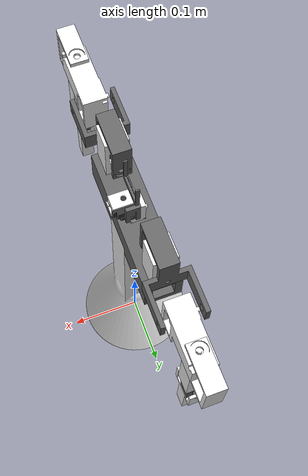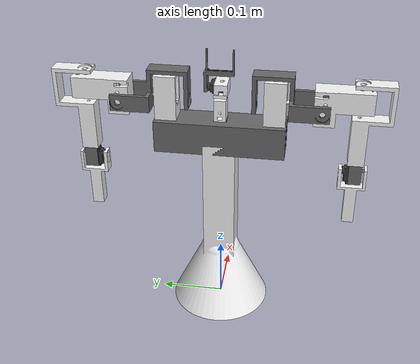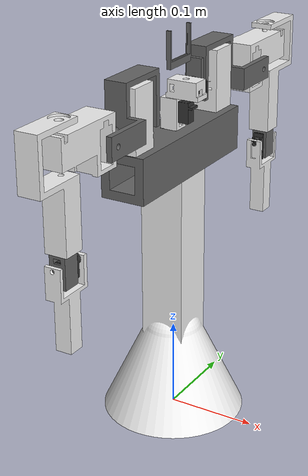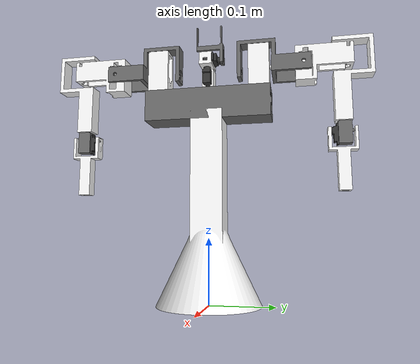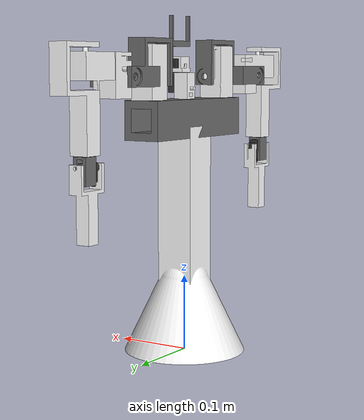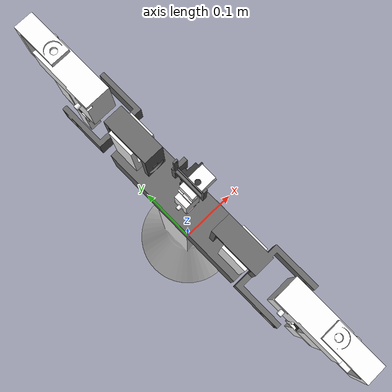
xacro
<?xml version="1.0"?>
<robot name="pibob" xmlns:xacro="http://www.ros.org/wiki/xacro">

  <xacro:property name="mesh_pkg" value="package://pibob_description/meshes"/>

  <!-- ===== arm-part debug toggles: flip a part to false to hide it while seating another.
       All default true, so the full arm renders normally. ===== -->
  <xacro:property name="show_top"     value="true"/>
  <xacro:property name="show_bracket" value="true"/>
  <xacro:property name="show_holder"  value="true"/>
  <xacro:property name="show_bicep"   value="true"/>
  <xacro:property name="show_forearm" value="true"/>   <!-- the elbow piece -->
  <xacro:property name="show_forearm_mesh" value="true"/>  <!-- the swinging forearm -->

  <!-- ============ Materials ============ -->
  <material name="white"><color rgba="0.95 0.95 0.95 1"/></material>
  <material name="grey"><color rgba="0.4 0.4 0.4 1"/></material>
  <material name="servo_grey"><color rgba="0.2 0.2 0.2 1"/></material>

  <xacro:macro name="servo_9g" params="xyz rpy">
    <visual>
      <origin xyz="${xyz}" rpy="${rpy}"/>
      <geometry><mesh filename="${mesh_pkg}/Servo-9g.stl" scale="0.001 0.001 0.001"/></geometry>
      <material name="servo_grey"/>
    </visual>
  </xacro:macro>

  <!-- ============ Base + torso ============ -->
  <link name="base_link">
    <visual>
      <origin xyz="0 0 0" rpy="0 0 0"/>
      <geometry><mesh filename="${mesh_pkg}/Desktop-Base.stl" scale="0.001 0.001 0.001"/></geometry>
      <material name="white"/>
    </visual>
  </link>

  <joint name="base_to_beam" type="fixed">
    <parent link="base_link"/>
    <child  link="shoulder_beam"/>
    <origin xyz="0 0 0.30" rpy="0 0 0"/>
  </joint>

  <link name="shoulder_beam">
    <visual>
      <origin xyz="0 0 0" rpy="1.5708 0 0"/>
      <geometry><mesh filename="${mesh_pkg}/Shoulder-Beam.stl" scale="0.001 0.001 0.001"/></geometry>
      <material name="grey"/>
    </visual>
  </link>

  <!-- ============ Head ============ -->
  <joint name="beam_to_head_base" type="fixed">
    <parent link="shoulder_beam"/>
    <child  link="head_base_link"/>
    <origin xyz="0 0 0.0355" rpy="0 0 0"/>   <!-- beam top face, on the head hole centre -->
  </joint>

  <!-- fixed to the beam: the bottom holder + the pan servo standing in it -->
  <link name="head_base_link">
    <visual>
      <origin xyz="-0.0025 0 0.00975" rpy="0 ${-pi/2} ${-pi/2}"/>   <!-- peg down, pocket forward -->
      <geometry><mesh filename="${mesh_pkg}/Head-BottomServoHolder.stl" scale="0.001 0.001 0.001"/></geometry>
      <material name="white"/>
    </visual>
    <xacro:servo_9g xyz="0.0159 0 0.03485" rpy="0 0 ${pi}"/>    <!-- pan servo (CH2), shaft up -->
  </link>

  <joint name="head_pan_joint" type="revolute">
    <parent link="shoulder_beam"/>
    <child  link="head_pan_link"/>
    <!-- pan servo shaft axis, at its horn face (top of the gear boss) -->
    <origin xyz="0.0159 0 0.07035" rpy="0 0 0"/>
    <axis xyz="0 0 1"/>
    <!-- safe range CH2: 0..180 deg => -pi/2..+pi/2 about home (90 deg) -->
    <limit lower="-1.5708" upper="1.5708" effort="1.0" velocity="3.14"/>
  </joint>

  <!-- turns with pan: the middle holder (on the pan horn) + the tilt servo inside it -->
  <link name="head_pan_link">
    <visual>
      <origin xyz="0 0.0005 0.010" rpy="0 0 0"/>
      <geometry><mesh filename="${mesh_pkg}/Head-MiddleServoHolder.stl" scale="0.001 0.001 0.001"/></geometry>
      <material name="white"/>
    </visual>
    <xacro:servo_9g xyz="-0.00315 0.0212 0.01105" rpy="${-pi/2} 0 0"/>    <!-- tilt servo (CH3) -->
  </link>

  <joint name="head_tilt_joint" type="revolute">
    <parent link="head_pan_link"/>
    <child  link="head_tilt_link"/>
    <!-- tilt servo shaft axis, at its horn face (where the camera arm sits on the horn) -->
    <origin xyz="-0.00315 0.0212 0.01105" rpy="0 0 0"/>
    <axis xyz="0 1 0"/>
    <!-- safe range CH3: 50..140 deg => -40..+50 deg around home -->
    <limit lower="-0.6981" upper="0.8727" effort="1.0" velocity="3.14"/>
  </joint>

  <!-- turns with tilt: the camera holder, its arm's hub hole on the tilt shaft -->
  <link name="head_tilt_link">
    <visual>
      <origin xyz="0 -0.01775 0.02867" rpy="0 ${pi/2} 0"/>
      <geometry><mesh filename="${mesh_pkg}/Head-CameraHolder.stl" scale="0.001 0.001 0.001"/></geometry>
      <material name="grey"/>
    </visual>
  </link>

  <joint name="head_to_camera" type="fixed">
    <parent link="head_tilt_link"/>
    <child  link="camera_link"/>
    <!-- centre of the camera board in the holder's U-frame -->
    <origin xyz="-0.00625 -0.0195 0.04467" rpy="0 0 0"/>
  </joint>

  <link name="camera_link"/>

  <!-- ============ Arm macro ============ -->
  <xacro:macro name="arm" params="side reflect bracket_mesh holder_mesh">

    <!-- Top servo holder: FIXED into the Shoulder-Beam end (houses the CH7/CH11 servo) -->
    <joint name="${side}_shoulder_top_joint" type="fixed">
      <parent link="shoulder_beam"/>
      <child  link="${side}_shoulder_top_link"/>
      <origin xyz="0 ${0.085*reflect} 0.065" rpy="0 0 0"/>
    </joint>
    <link name="${side}_shoulder_top_link">
      <xacro:if value="${show_top}">
      <visual>
        <!-- roll 180 = small end down; per-side yaw flips the pin to mirror the two holders -->
        <origin xyz="0 0 0" rpy="3.14159 0 ${(1+reflect)/2*3.14159}"/>
        <geometry><mesh filename="${mesh_pkg}/Shoulder-Top-ServoHolder.stl" scale="0.001 0.001 0.001"/></geometry>
        <material name="white"/>
      </visual>
      </xacro:if>
    </link>

    <!-- CH7/CH11 shoulder_rot: top holder rotates the BRACKET (arm up/down front) -->
    <joint name="${side}_shoulder_rot_joint" type="revolute">
      <parent link="${side}_shoulder_top_link"/>
      <child  link="${side}_shoulder_rot_link"/>
      <!-- on the top holder's dia-5.8 pin (= CH7/CH11 shaft axis), at the pin root -->
      <origin xyz="0 ${0.01345*reflect} 0.0049" rpy="0 0 0"/>
      <axis xyz="0 ${reflect} 0"/>
      <limit lower="-0.3491" upper="1.0472" effort="1.0" velocity="3.14"/>
    </joint>
    <link name="${side}_shoulder_rot_link">
      <xacro:if value="${show_bracket}">
      <visual>
        <!-- per-side yaw: invert the our-left (reflect=-1) bracket 180 to mirror -->
        <origin xyz="0.0 ${0.00655*reflect} 0.0131" rpy="0 0 ${(1-reflect)/2*3.14159}"/>
        <geometry><mesh filename="${mesh_pkg}/${bracket_mesh}" scale="0.001 0.001 0.001"/></geometry>
        <material name="grey"/>
      </visual>
      </xacro:if>
    </link>

    <joint name="${side}_shoulder_lift_joint" type="revolute">
      <parent link="${side}_shoulder_rot_link"/>
      <child  link="${side}_shoulder_lift_link"/>
      <!-- on the shoulder servo holder's dia-5.8 X pin (= CH6/CH10 shaft axis), at the pin root -->
      <origin xyz="-0.01345 ${0.05605*reflect} 0.00465" rpy="0 0 0"/>
      <axis xyz="${reflect} 0 0"/>   <!-- mirror per side so both arms wing out symmetrically -->
      <!-- CH6/CH10 safe 70..110 -->
      <limit lower="-0.3491" upper="0.3491" effort="1.0" velocity="3.14"/>
    </joint>
    <link name="${side}_shoulder_lift_link">
      <xacro:if value="${show_holder}">
      <visual>
        <origin xyz="0.01345 ${0.0275*reflect} -0.00455" rpy="0 -1.5708 3.14159"/>
        <geometry><mesh filename="${mesh_pkg}/${holder_mesh}" scale="0.001 0.001 0.001"/></geometry>
        <material name="white"/>
      </visual>
      </xacro:if>
    </link>

    <joint name="${side}_arm_rot_joint" type="revolute">
      <parent link="${side}_shoulder_lift_link"/>
      <child  link="${side}_upper_arm_link"/>
      <!-- on the shoulder servo holder's dia-5.8 Z pin (= CH5/CH9 shaft axis), at the pin root -->
      <origin xyz="0.017 ${0.0511*reflect} 0.0199" rpy="0 0 0"/>
      <axis xyz="0 0 1"/>
      <!-- CH5/CH9: opened to ~+/-51deg (was +/-20 "safe 70..110") — widen/narrow as needed -->
      <limit lower="-0.9" upper="0.9" effort="1.0" velocity="3.14"/>
    </joint>
    <link name="${side}_upper_arm_link">
      <xacro:if value="${show_bicep}">
      <visual>
        <!-- bicep: right (reflect=+1) = pi; left gets -180 to mirror -->
        <origin xyz="0.00045 ${0.0194*reflect} -0.05445" rpy="0 1.5708 ${3.14159 - (1-reflect)/2*3.14159}"/>
        <geometry><mesh filename="${mesh_pkg}/Arm-Bicep.stl" scale="0.001 0.001 0.001"/></geometry>
        <material name="white"/>
      </visual>
      </xacro:if>
      <!-- elbow: FIXED to the bicep (houses CH4 servo) — does NOT move with the joint. -->
      <xacro:if value="${show_forearm}">
      <visual>
        <origin xyz="0.00045 ${0.0054*reflect} -0.13045" rpy="-1.5708 0 ${1.5708*reflect}"/>
        <geometry><mesh filename="${mesh_pkg}/Arm-Elbow.stl" scale="0.001 0.001 0.001"/></geometry>
        <material name="grey"/>
      </visual>
      <!-- elbow servo (CH4/CH8) in the elbow holder's pocket; its shaft is the bicep axis -->
      <xacro:servo_9g xyz="0.00045 ${-0.0178*reflect} -0.13455" rpy="${pi/2} ${pi/2} ${(1-reflect)/2*pi}"/>
      </xacro:if>
    </link>

    <joint name="${side}_bicep_joint" type="revolute">
      <parent link="${side}_upper_arm_link"/>
      <child  link="${side}_forearm_link"/>
      <!-- on the elbow holder's dia-4.7 pin (= CH4/CH8 9 g servo shaft axis), at the pin root -->
      <origin xyz="0.00045 ${0.0129*reflect} -0.13455" rpy="0 0 0"/>
      <axis xyz="0 -1 0"/>   <!-- flipped: elbow bends forward, not back -->
      <!-- CH4/CH8 safe 90..180 => 0..+pi/2 (cannot go below straight) -->
      <limit lower="0.0" upper="1.5708" effort="1.0" velocity="3.14"/>
    </joint>
    <link name="${side}_forearm_link">
      <xacro:if value="${show_forearm_mesh}">
      <!-- only the FOREARM swings with the elbow joint; per-side +/-90 yaw mirrors the single mesh -->
      <visual>
        <origin xyz="0 ${-0.0135*reflect} -0.0424" rpy="-1.5708 0 ${1.5708*reflect}"/>
        <geometry><mesh filename="${mesh_pkg}/Arm-Forearm.stl" scale="0.001 0.001 0.001"/></geometry>
        <material name="white"/>
      </visual>
      </xacro:if>
    </link>

  </xacro:macro>

  <xacro:arm side="r" reflect="-1"
             bracket_mesh="Shoulder-Right-Bracket.stl"
             holder_mesh="Shoulder-Right-ServoHolder.stl"/>
  <xacro:arm side="l" reflect="1"
             bracket_mesh="Shoulder-Left-Bracket.stl"
             holder_mesh="Shoulder-Left-ServoHolder.stl"/>

</robot>
